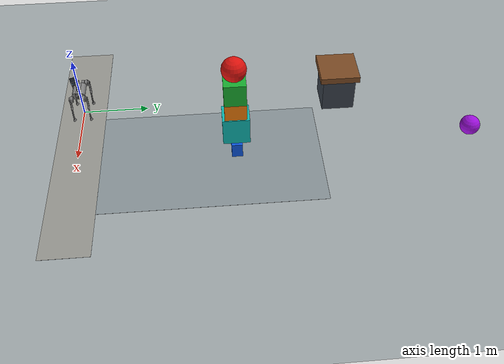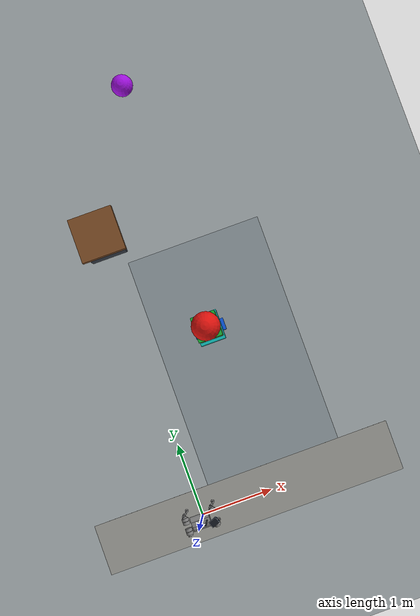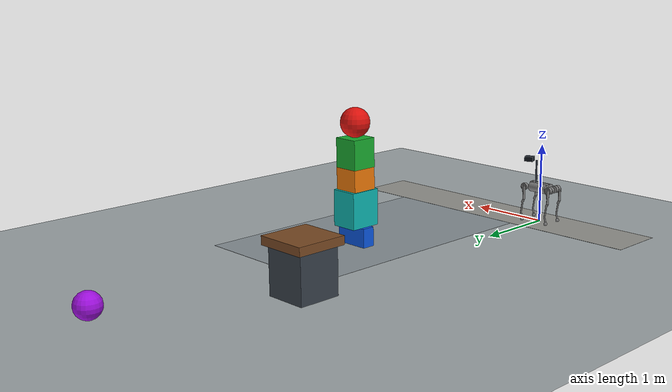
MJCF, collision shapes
<mujoco model="pss_go1_online">
  <compiler angle="radian" meshdir="../../pss/sim/mujoco/assets/go1/meshes" autolimits="true" />
  <option iterations="1" ls_iterations="5" timestep="0.004" integrator="Euler">
    <flag eulerdamp="disable" />
  </option>
  <default>
    <default class="go1">
      <geom condim="1" contype="0" conaffinity="0" />
      <joint axis="0 1 0" armature="0.005" damping="0.5" />
      <position forcerange="-23.7 23.7" inheritrange="1" kp="35" />
      <default class="abduction">
        <joint axis="1 0 0" range="-0.863 0.863" frictionloss="0.3" />
      </default>
      <default class="hip">
        <joint range="-0.686 4.501" frictionloss="0.3" />
      </default>
      <default class="knee">
        <joint range="-2.818 -0.888" frictionloss="1.0" />
        <position forcerange="-35.55 35.55" />
      </default>
      <default class="visual">
        <geom type="mesh" contype="0" conaffinity="0" group="2" material="dark" />
      </default>
      <default class="collision">
        <geom group="3" type="capsule" contype="0" conaffinity="1" />
        <default class="hip_left1">
          <geom size="0.046 0.02" pos="0 0.045 0" quat="1 1 0 0" type="cylinder" />
        </default>
        <default class="hip_left2">
          <geom size="0.031 0.02" pos="0 0.065 0" quat="1 1 0 0" type="cylinder" />
        </default>
        <default class="hip_left3">
          <geom size="0.046 0.02" quat="1 1 0 0" type="cylinder" />
        </default>
        <default class="hip_right1">
          <geom size="0.046 0.02" pos="0 -0.045 0" quat="1 1 0 0" type="cylinder" />
        </default>
        <default class="hip_right2">
          <geom size="0.031 0.02" pos="0 -0.065 0" quat="1 1 0 0" type="cylinder" />
        </default>
        <default class="hip_right3">
          <geom size="0.046 0.02" quat="1 1 0 0" type="cylinder" />
        </default>
        <default class="thigh1">
          <geom size="0.015" fromto="-0.02 0 0 -0.02 0 -0.16" />
        </default>
        <default class="thigh2">
          <geom size="0.015" fromto="0 0 0 -0.02 0 -0.1" />
        </default>
        <default class="thigh3">
          <geom size="0.015" fromto="-0.02 0 -0.16 0 0 -0.2" />
        </default>
        <default class="calf1">
          <geom size="0.01" fromto="0 0 0 0.02 0 -0.13" />
        </default>
        <default class="calf2">
          <geom size="0.01" fromto="0.02 0 -0.13 0 0 -0.2" />
        </default>
        <default class="foot">
          <geom type="sphere" size="0.023" pos="0 0 -0.213" solimp="0.9 .95 0.023" contype="0" conaffinity="1" />
        </default>
      </default>
    </default>
  </default>
  <asset>
    <material name="dark" rgba="0.22 0.25 0.29 1" specular="0.38" shininess="0.32" />
    <mesh class="go1" file="trunk.stl" />
    <mesh class="go1" file="hip.stl" />
    <mesh class="go1" file="thigh_mirror.stl" />
    <mesh class="go1" file="calf.stl" />
    <mesh class="go1" file="thigh.stl" />
  </asset>
  <worldbody>
    <light name="spotlight" mode="targetbodycom" target="trunk" pos="3 0 4" />
    <body name="trunk" pos="0 0 0.445" childclass="go1">
      <camera name="track" pos="0.846 -1.3 0.316" xyaxes="0.866 0.500 0.000 -0.171 0.296 0.940" mode="trackcom" />
      <camera name="top" pos="-1 0 1" xyaxes="0 -1 0 0.7 0 0.7" mode="trackcom" />
      <camera name="side" pos="0 -1 .3" xyaxes="1 0 0 0 1 2" mode="trackcom" />
      <camera name="back" pos="-1 0 .3" xyaxes="0 -1 0 1 0 2" mode="trackcom" />
      <body name="rgbd_mast" pos="0.08 0 0.055">
        <geom type="cylinder" size="0.012 0.145" pos="0 0 0.145" mass="0.04" rgba="0.12 0.14 0.17 1" contype="0" conaffinity="0" group="2" />
        <camera name="omnivla_ego" pos="0.18 0 0.295" xyaxes="0 -1 0 0 0 1" mode="fixed" fovy="58" />
        <body name="rgbd_head" pos="0.115 0 0.295" quat="0.984808 0 0 0.173648">
          <geom type="box" size="0.055 0.042 0.032" mass="0.12" rgba="0.07 0.09 0.12 1" contype="0" conaffinity="0" group="2" />
          <geom type="cylinder" size="0.014 0.006" pos="0.055 -0.021 0" quat="0.707107 0 0.707107 0" mass="0.01" rgba="0.05 0.18 0.28 1" contype="0" conaffinity="0" group="2" />
          <geom type="cylinder" size="0.014 0.006" pos="0.055 0.021 0" quat="0.707107 0 0.707107 0" mass="0.01" rgba="0.05 0.18 0.28 1" contype="0" conaffinity="0" group="2" />
          <camera name="ego_rgbd" pos="0.065 0 0" xyaxes="0 -1 0 0 0 1" mode="fixed" fovy="58" />
        </body>
      </body>
      <site name="head" pos="0.3 0 0" rgba="1 0 0 1" size="0.02" group="5" />
      <inertial pos="0.0223 0.002 -0.0005" quat="-0.00342088 0.705204 0.000106698 0.708996" mass="5.204" diaginertia="0.0716565 0.0630105 0.0168101" />
      <freejoint />
      <geom class="visual" mesh="trunk" />
      <geom class="collision" size="0.125 0.04 0.057" type="box" />
      <geom class="collision" quat="1 0 1 0" pos="0 -0.04 0" size="0.058 0.125" type="cylinder" />
      <geom class="collision" quat="1 0 1 0" pos="0 +0.04 0" size="0.058 0.125" type="cylinder" />
      <site name="imu" pos="-0.01592 -0.06659 -0.00617" group="5" />
      <body name="FR_hip" pos="0.1881 -0.04675 0">
        <inertial pos="-0.0049166 0.00762615 -8.865e-05" quat="0.507341 0.514169 0.495027 0.482891" mass="0.68" diaginertia="0.000734064 0.000468438 0.000398719" />
        <joint class="abduction" name="FR_hip_joint" />
        <geom class="visual" mesh="hip" quat="1 0 0 0" />
        <geom class="hip_right1" />
        <geom class="hip_right2" />
        <body name="FR_thigh" pos="0 -0.08 0">
          <inertial pos="-0.00304722 0.019315 -0.0305004" quat="0.65243 -0.0272313 0.0775126 0.753383" mass="1.009" diaginertia="0.00478717 0.00460903 0.000709268" />
          <joint class="hip" name="FR_thigh_joint" />
          <geom class="visual" mesh="thigh_mirror" />
          <geom class="thigh1" />
          <geom class="thigh2" />
          <geom class="thigh3" />
          <body name="FR_calf" pos="0 0 -0.213">
            <inertial pos="0.00429862 0.000976676 -0.146197" quat="0.691246 0.00357467 0.00511118 0.722592" mass="0.195862" diaginertia="0.00149767 0.00148468 3.58427e-05" />
            <joint class="knee" name="FR_calf_joint" />
            <geom class="visual" mesh="calf" />
            <geom class="calf1" />
            <geom class="calf2" />
            <geom name="FR" class="foot" />
            <site name="FR" pos="0 0 -0.213" type="sphere" size="0.023" group="5" />
          </body>
        </body>
      </body>
      <body name="FL_hip" pos="0.1881 0.04675 0">
        <inertial pos="-0.0049166 -0.00762615 -8.865e-05" quat="0.482891 0.495027 0.514169 0.507341" mass="0.68" diaginertia="0.000734064 0.000468438 0.000398719" />
        <joint class="abduction" name="FL_hip_joint" />
        <geom class="visual" mesh="hip" />
        <geom class="hip_left1" />
        <geom class="hip_left2" />
        <body name="FL_thigh" pos="0 0.08 0">
          <inertial pos="-0.00304722 -0.019315 -0.0305004" quat="0.753383 0.0775126 -0.0272313 0.65243" mass="1.009" diaginertia="0.00478717 0.00460903 0.000709268" />
          <joint class="hip" name="FL_thigh_joint" />
          <geom class="visual" mesh="thigh" />
          <geom class="thigh1" />
          <geom class="thigh2" />
          <geom class="thigh3" />
          <body name="FL_calf" pos="0 0 -0.213">
            <inertial pos="0.00429862 0.000976676 -0.146197" quat="0.691246 0.00357467 0.00511118 0.722592" mass="0.195862" diaginertia="0.00149767 0.00148468 3.58427e-05" />
            <joint class="knee" name="FL_calf_joint" />
            <geom class="visual" mesh="calf" />
            <geom class="calf1" />
            <geom class="calf2" />
            <geom name="FL" class="foot" />
            <site name="FL" pos="0 0 -0.213" type="sphere" size="0.023" group="5" />
          </body>
        </body>
      </body>
      <body name="RR_hip" pos="-0.1881 -0.04675 0">
        <inertial pos="0.0049166 0.00762615 -8.865e-05" quat="0.495027 0.482891 0.507341 0.514169" mass="0.68" diaginertia="0.000734064 0.000468438 0.000398719" />
        <joint class="abduction" name="RR_hip_joint" />
        <geom class="visual" quat="0 0 0 -1" mesh="hip" />
        <geom class="hip_right1" />
        <geom class="hip_right2" />
        <geom class="hip_right3" />
        <body name="RR_thigh" pos="0 -0.08 0">
          <inertial pos="-0.00304722 0.019315 -0.0305004" quat="0.65243 -0.0272313 0.0775126 0.753383" mass="1.009" diaginertia="0.00478717 0.00460903 0.000709268" />
          <joint class="hip" name="RR_thigh_joint" />
          <geom class="visual" mesh="thigh_mirror" />
          <geom class="thigh1" />
          <geom class="thigh2" />
          <geom class="thigh3" />
          <body name="RR_calf" pos="0 0 -0.213">
            <inertial pos="0.00429862 0.000976676 -0.146197" quat="0.691246 0.00357467 0.00511118 0.722592" mass="0.195862" diaginertia="0.00149767 0.00148468 3.58427e-05" />
            <joint class="knee" name="RR_calf_joint" />
            <geom class="visual" mesh="calf" />
            <geom class="calf1" />
            <geom class="calf2" />
            <geom name="RR" class="foot" />
            <site name="RR" pos="0 0 -0.213" type="sphere" size="0.023" group="5" />
          </body>
        </body>
      </body>
      <body name="RL_hip" pos="-0.1881 0.04675 0">
        <inertial pos="0.0049166 -0.00762615 -8.865e-05" quat="0.514169 0.507341 0.482891 0.495027" mass="0.68" diaginertia="0.000734064 0.000468438 0.000398719" />
        <joint class="abduction" name="RL_hip_joint" />
        <geom class="visual" quat="0 0 1 0" mesh="hip" />
        <geom class="hip_left1" />
        <geom class="hip_left2" />
        <geom class="hip_left3" />
        <body name="RL_thigh" pos="0 0.08 0">
          <inertial pos="-0.00304722 -0.019315 -0.0305004" quat="0.753383 0.0775126 -0.0272313 0.65243" mass="1.009" diaginertia="0.00478717 0.00460903 0.000709268" />
          <joint class="hip" name="RL_thigh_joint" />
          <geom class="visual" mesh="thigh" />
          <geom class="thigh1" />
          <geom class="thigh2" />
          <geom class="thigh3" />
          <body name="RL_calf" pos="0 0 -0.213">
            <inertial pos="0.00429862 0.000976676 -0.146197" quat="0.691246 0.00357467 0.00511118 0.722592" mass="0.195862" diaginertia="0.00149767 0.00148468 3.58427e-05" />
            <joint class="knee" name="RL_calf_joint" />
            <geom class="visual" mesh="calf" />
            <geom class="calf1" />
            <geom class="calf2" />
            <geom name="RL" class="foot" />
            <site name="RL" pos="0 0 -0.213" type="sphere" size="0.023" group="5" />
          </body>
        </body>
      </body>
    </body>
  </worldbody>
  <actuator>
    <position class="abduction" name="FR_hip" joint="FR_hip_joint" />
    <position class="hip" name="FR_thigh" joint="FR_thigh_joint" />
    <position class="knee" name="FR_calf" joint="FR_calf_joint" />
    <position class="abduction" name="FL_hip" joint="FL_hip_joint" />
    <position class="hip" name="FL_thigh" joint="FL_thigh_joint" />
    <position class="knee" name="FL_calf" joint="FL_calf_joint" />
    <position class="abduction" name="RR_hip" joint="RR_hip_joint" />
    <position class="hip" name="RR_thigh" joint="RR_thigh_joint" />
    <position class="knee" name="RR_calf" joint="RR_calf_joint" />
    <position class="abduction" name="RL_hip" joint="RL_hip_joint" />
    <position class="hip" name="RL_thigh" joint="RL_thigh_joint" />
    <position class="knee" name="RL_calf" joint="RL_calf_joint" />
  </actuator>
  <sensor>
    <gyro site="imu" name="gyro" />
    <velocimeter site="imu" name="local_linvel" />
    <accelerometer site="imu" name="accelerometer" />
    <framepos objtype="site" objname="imu" name="position" />
    <framezaxis objtype="site" objname="imu" name="upvector" />
    <framexaxis objtype="site" objname="imu" name="forwardvector" />
    <framelinvel objtype="site" objname="imu" name="global_linvel" />
    <frameangvel objtype="site" objname="imu" name="global_angvel" />
    <framequat objtype="site" objname="imu" name="orientation" />
    <framelinvel objtype="site" objname="FR" name="FR_global_linvel" />
    <framelinvel objtype="site" objname="FL" name="FL_global_linvel" />
    <framelinvel objtype="site" objname="RR" name="RR_global_linvel" />
    <framelinvel objtype="site" objname="RL" name="RL_global_linvel" />
    <framepos objtype="site" objname="FR" name="FR_pos" reftype="site" refname="imu" />
    <framepos objtype="site" objname="FL" name="FL_pos" reftype="site" refname="imu" />
    <framepos objtype="site" objname="RR" name="RR_pos" reftype="site" refname="imu" />
    <framepos objtype="site" objname="RL" name="RL_pos" reftype="site" refname="imu" />
  </sensor>
  <option timestep="0.004" gravity="0 0 -9.81" integrator="Euler" iterations="20" ls_iterations="10" />
  <visual>
    <global offwidth="1280" offheight="720" />
    <quality shadowsize="4096" offsamples="4" />
    <map znear="0.01" zfar="30" fogstart="8" fogend="18" />
    <headlight diffuse="0.24 0.25 0.27" ambient="0.18 0.19 0.20" specular="0 0 0" />
    <rgba haze="0.75 0.79 0.84 1" />
  </visual>
  <asset>
    <texture name="pss_sky" type="skybox" builtin="gradient" rgb1="0.80 0.84 0.87" rgb2="0.94 0.95 0.96" width="512" height="3072" />
    <material name="pss_floor" rgba="0.62 0.65 0.66 1" reflectance="0" roughness="0.92" specular="0" shininess="0" />
    <material name="pss_table_top" rgba="0.48 0.29 0.14 0" specular="0.30" shininess="0.22" />
    <material name="pss_table_base" rgba="0.22 0.25 0.29 0" specular="0.15" />
    <material name="pss_wall" rgba="0.84 0.86 0.88 1" roughness="0.9" />
  </asset>
  <worldbody>
    <light name="pss_key" pos="-3.2 -4.2 6.5" dir="0.35 0.45 -1" directional="true" diffuse="0.58 0.56 0.53" specular="0.12 0.12 0.12" castshadow="true" />
    <light name="pss_fill" pos="3.2 -1.0 4.0" dir="-0.55 0.15 -1" directional="true" diffuse="0.22 0.26 0.30" specular="0.08 0.10 0.13" castshadow="false" />
    <geom name="floor" type="plane" size="12 12 0.1" material="pss_floor" friction="0.80 0.01 0.001" contype="1" conaffinity="0" priority="1" />
    <body name="table" pos="0 4 0">
      <geom name="table_pedestal" type="box" size="0.25 0.25 0.275" pos="0 0 0.275" material="pss_table_base" friction="0.8 0.01 0.001" />
      <geom name="table_top" type="box" size="0.3 0.3 0.05" pos="0 0 0.6" material="pss_table_top" friction="0.8 0.01 0.001" />
    </body>
    <body name="scene_prop_event_floor_inlay" pos="1.15 1.9 0.0005" quat="1 0 0 0">
      <geom name="scene_prop_geom_event_floor_inlay" type="box" size="0.95 1.7 0.001" rgba="0.53 0.57 0.59 1" friction="0.6 0.01 0.001" contype="0" conaffinity="0" />
    </body>
    <body name="scene_prop_route_floor_inlay" pos="0.675 0 0.001" quat="1 0 0 0">
      <geom name="scene_prop_geom_route_floor_inlay" type="box" size="2.125 0.35 0.001" rgba="0.58 0.58 0.56 1" friction="0.6 0.01 0.001" contype="0" conaffinity="0" />
    </body>
    <body name="dynamic_obstacle_purple_ball" pos="0.9595407 5.9094543 0.15" quat="1 0 0 0">
      <freejoint />
      <inertial pos="0 0 0" mass="1.6875" diaginertia="0.0151875 0.0151875 0.0151875" />
      <geom name="dynamic_obstacle_geom_purple_ball" type="sphere" size="0.15" rgba="0.63 0.06 0.88 1" friction="0.01 0.01 0.001" solref="0.008 1.0" solimp="0.95 0.99 0.001" contype="1" conaffinity="1" priority="1" />
    </body>
    <body name="dynamic_obstacle_stack_4" pos="0.9595407 2.3543087 0.11779067" quat="1 0 0 0">
      <freejoint />
      <inertial pos="0 0 0" mass="0.25763919" diaginertia="0.0017411809 0.0051098064 0.0044678861" />
      <geom name="dynamic_obstacle_geom_stack_4" type="box" size="0.21359991 0.08 0.11779067" rgba="0.04 0.34 0.88 1" friction="0.28969457 0.01 0.001" solref="0.008 1.0" solimp="0.95 0.99 0.001" contype="1" conaffinity="1" priority="1" />
    </body>
    <body name="dynamic_obstacle_stack_5" pos="0.9595407 2.3543087 0.4558595" quat="1 0 0 0">
      <freejoint />
      <inertial pos="0 0 0" mass="0.93419429" diaginertia="0.027230961 0.023891925 0.020903278" />
      <geom name="dynamic_obstacle_geom_stack_5" type="box" size="0.1679352 0.19729409 0.22027816" rgba="0.05 0.72 0.7 1" friction="0.6763042 0.01 0.001" solref="0.008 1.0" solimp="0.95 0.99 0.001" contype="1" conaffinity="1" priority="1" />
    </body>
    <body name="dynamic_obstacle_stack_6" pos="0.9595407 2.3543087 0.80885335" quat="1 0 0 0">
      <freejoint />
      <inertial pos="0 0 0" mass="0.41590025" diaginertia="0.0059396514 0.005735256 0.0067912806" />
      <geom name="dynamic_obstacle_geom_stack_6" type="box" size="0.15413139 0.15884219 0.13271569" rgba="0.94 0.48 0.035 1" friction="0.4052142 0.01 0.001" solref="0.008 1.0" solimp="0.95 0.99 0.001" contype="1" conaffinity="1" priority="1" />
    </body>
    <body name="dynamic_obstacle_stack_7" pos="0.9595407 2.3543087 1.1191913" quat="1 0 0 0">
      <freejoint />
      <inertial pos="0 0 0" mass="0.56145084" diaginertia="0.010699494 0.010359085 0.0092495182" />
      <geom name="dynamic_obstacle_geom_stack_7" type="box" size="0.15427903 0.16006538 0.17762228" rgba="0.1 0.68 0.19 1" friction="0.51497827 0.01 0.001" solref="0.008 1.0" solimp="0.95 0.99 0.001" contype="1" conaffinity="1" priority="1" />
    </body>
    <body name="dynamic_obstacle_red_target" pos="0.9595407 2.3543087 1.4750736" quat="1 0 0 0">
      <freejoint />
      <inertial pos="0 0 0" mass="0.72505637" diaginertia="0.0092159399 0.0092159399 0.0092159399" />
      <geom name="dynamic_obstacle_geom_red_target" type="sphere" size="0.17826001" rgba="0.88 0.075 0.055 1" friction="0.5 0.01 0.001" solref="0.008 1.0" solimp="0.95 0.99 0.001" contype="1" conaffinity="1" priority="1" />
    </body>
  </worldbody>
</mujoco>
